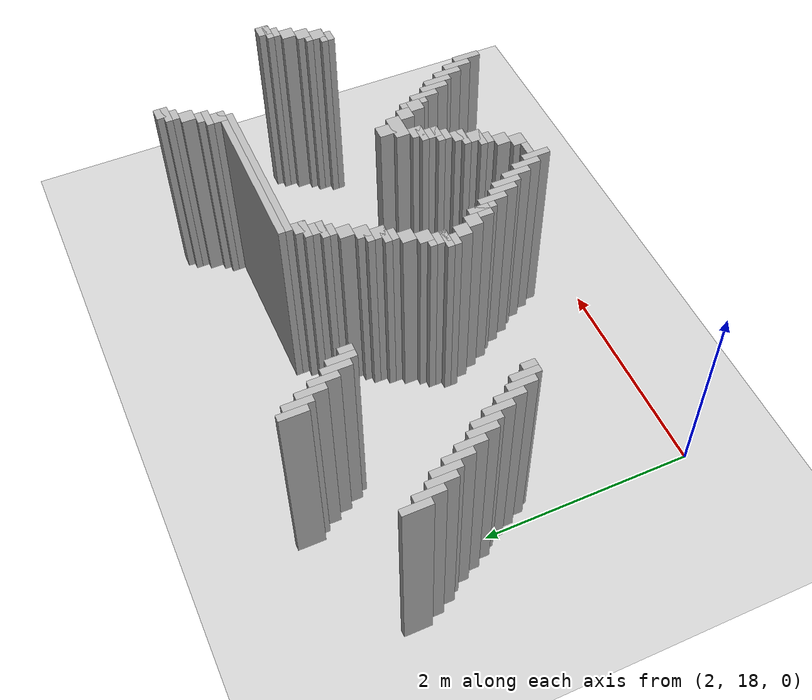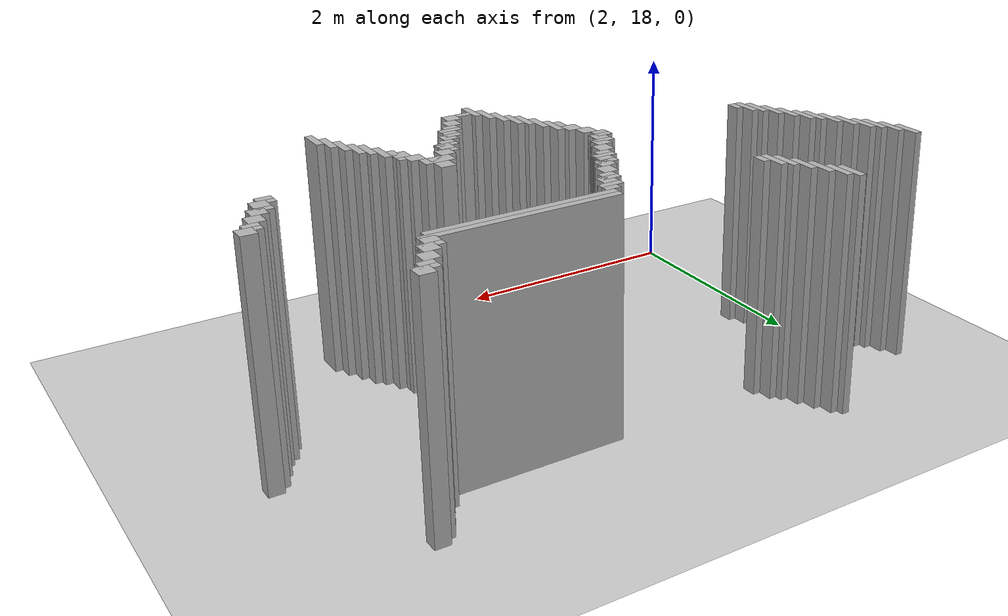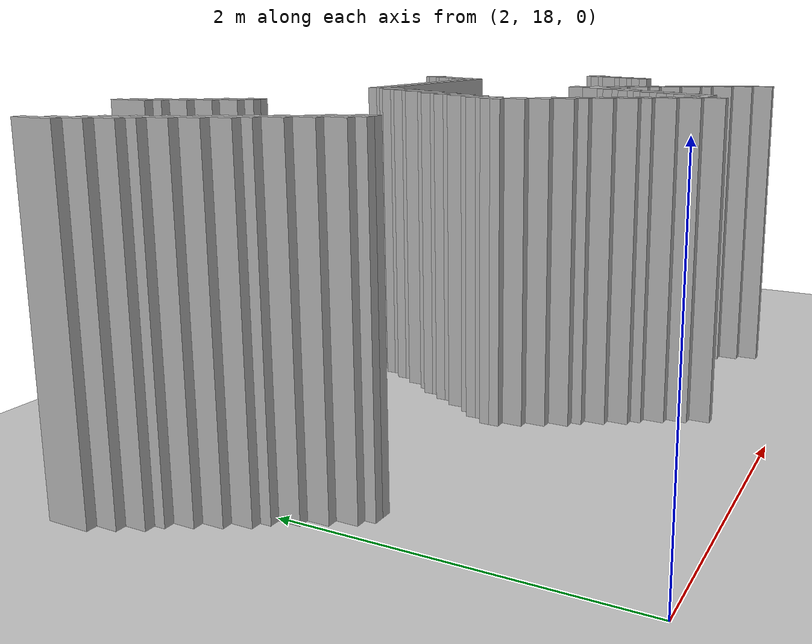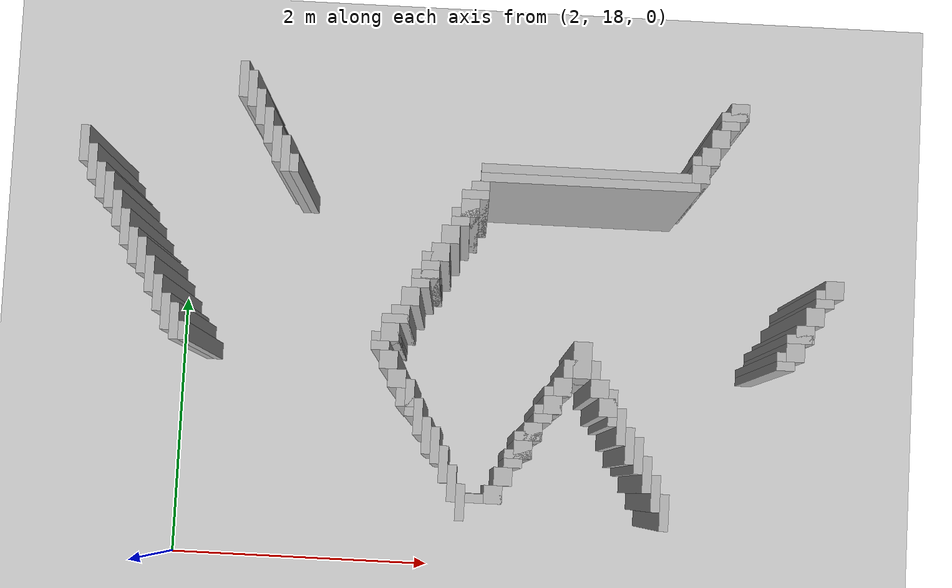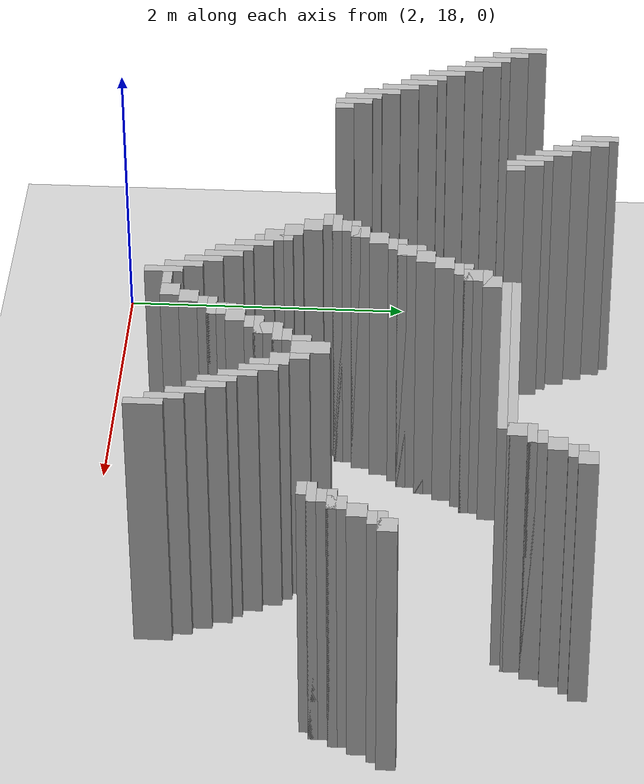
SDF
<sdf version="1.6">
 <world name="slam_world">
  <model name="ground_plane">
   <static>true</static>
   <link name="link">
    <collision name="collision">
     <geometry><plane><normal>0 0 1</normal><size>100 100</size></plane></geometry>
    </collision>
    <visual name="visual">
     <geometry><plane><normal>0 0 1</normal><size>100 100</size></plane></geometry>
     <material>
      <ambient>0.8 0.8 0.8 1</ambient>
      <diffuse>0.8 0.8 0.8 1</diffuse>
      <specular>0.8 0.8 0.8 1</specular>
     </material>
    </visual>
   </link>
  </model>
  <model name="wall_255">
   <static>true</static>
   <pose>2.585106382978723 21.382978723404253 1.0 0 0 0</pose>
   <link name="link">
    <collision name="collision">
     <geometry><box><size>0.06382978723404255 0.2553191489361702 2.0</size></box></geometry>
    </collision>
    <visual name="visual">
     <geometry><box><size>0.06382978723404255 0.2553191489361702 2.0</size></box></geometry>
     <material><ambient>0.5 0.5 0.5 1</ambient><diffuse>0.7 0.7 0.7 1</diffuse></material>
    </visual>
   </link>
  </model>
  <model name="wall_263">
   <static>true</static>
   <pose>2.6489361702127656 21.319148936170212 1.0 0 0 0</pose>
   <link name="link">
    <collision name="collision">
     <geometry><box><size>0.06382978723404255 0.2553191489361702 2.0</size></box></geometry>
    </collision>
    <visual name="visual">
     <geometry><box><size>0.06382978723404255 0.2553191489361702 2.0</size></box></geometry>
     <material><ambient>0.5 0.5 0.5 1</ambient><diffuse>0.7 0.7 0.7 1</diffuse></material>
    </visual>
   </link>
  </model>
  <model name="wall_270">
   <static>true</static>
   <pose>6.063829787234042 21.319148936170212 1.0 0 0 0</pose>
   <link name="link">
    <collision name="collision">
     <geometry><box><size>0.1276595744680851 0.1276595744680851 2.0</size></box></geometry>
    </collision>
    <visual name="visual">
     <geometry><box><size>0.1276595744680851 0.1276595744680851 2.0</size></box></geometry>
     <material><ambient>0.5 0.5 0.5 1</ambient><diffuse>0.7 0.7 0.7 1</diffuse></material>
    </visual>
   </link>
  </model>
  <model name="wall_275">
   <static>true</static>
   <pose>2.712765957446808 21.191489361702125 1.0 0 0 0</pose>
   <link name="link">
    <collision name="collision">
     <geometry><box><size>0.06382978723404255 0.2553191489361702 2.0</size></box></geometry>
    </collision>
    <visual name="visual">
     <geometry><box><size>0.06382978723404255 0.2553191489361702 2.0</size></box></geometry>
     <material><ambient>0.5 0.5 0.5 1</ambient><diffuse>0.7 0.7 0.7 1</diffuse></material>
    </visual>
   </link>
  </model>
  <model name="wall_276">
   <static>true</static>
   <pose>6.031914893617021 21.28723404255319 1.0 0 0 0</pose>
   <link name="link">
    <collision name="collision">
     <geometry><box><size>0.19148936170212766 0.06382978723404255 2.0</size></box></geometry>
    </collision>
    <visual name="visual">
     <geometry><box><size>0.19148936170212766 0.06382978723404255 2.0</size></box></geometry>
     <material><ambient>0.5 0.5 0.5 1</ambient><diffuse>0.7 0.7 0.7 1</diffuse></material>
    </visual>
   </link>
  </model>
  <model name="wall_282">
   <static>true</static>
   <pose>5.999999999999999 21.223404255319146 1.0 0 0 0</pose>
   <link name="link">
    <collision name="collision">
     <geometry><box><size>0.1276595744680851 0.06382978723404255 2.0</size></box></geometry>
    </collision>
    <visual name="visual">
     <geometry><box><size>0.1276595744680851 0.06382978723404255 2.0</size></box></geometry>
     <material><ambient>0.5 0.5 0.5 1</ambient><diffuse>0.7 0.7 0.7 1</diffuse></material>
    </visual>
   </link>
  </model>
  <model name="wall_287">
   <static>true</static>
   <pose>2.7765957446808507 21.06382978723404 1.0 0 0 0</pose>
   <link name="link">
    <collision name="collision">
     <geometry><box><size>0.06382978723404255 0.2553191489361702 2.0</size></box></geometry>
    </collision>
    <visual name="visual">
     <geometry><box><size>0.06382978723404255 0.2553191489361702 2.0</size></box></geometry>
     <material><ambient>0.5 0.5 0.5 1</ambient><diffuse>0.7 0.7 0.7 1</diffuse></material>
    </visual>
   </link>
  </model>
  <model name="wall_288">
   <static>true</static>
   <pose>5.936170212765957 21.127659574468083 1.0 0 0 0</pose>
   <link name="link">
    <collision name="collision">
     <geometry><box><size>0.1276595744680851 0.1276595744680851 2.0</size></box></geometry>
    </collision>
    <visual name="visual">
     <geometry><box><size>0.1276595744680851 0.1276595744680851 2.0</size></box></geometry>
     <material><ambient>0.5 0.5 0.5 1</ambient><diffuse>0.7 0.7 0.7 1</diffuse></material>
    </visual>
   </link>
  </model>
  <model name="wall_295">
   <static>true</static>
   <pose>2.840425531914893 20.936170212765955 1.0 0 0 0</pose>
   <link name="link">
    <collision name="collision">
     <geometry><box><size>0.06382978723404255 0.2553191489361702 2.0</size></box></geometry>
    </collision>
    <visual name="visual">
     <geometry><box><size>0.06382978723404255 0.2553191489361702 2.0</size></box></geometry>
     <material><ambient>0.5 0.5 0.5 1</ambient><diffuse>0.7 0.7 0.7 1</diffuse></material>
    </visual>
   </link>
  </model>
  <model name="wall_296">
   <static>true</static>
   <pose>5.872340425531914 21.0 1.0 0 0 0</pose>
   <link name="link">
    <collision name="collision">
     <geometry><box><size>0.1276595744680851 0.1276595744680851 2.0</size></box></geometry>
    </collision>
    <visual name="visual">
     <geometry><box><size>0.1276595744680851 0.1276595744680851 2.0</size></box></geometry>
     <material><ambient>0.5 0.5 0.5 1</ambient><diffuse>0.7 0.7 0.7 1</diffuse></material>
    </visual>
   </link>
  </model>
  <model name="wall_302">
   <static>true</static>
   <pose>1.4999999999999998 20.872340425531913 1.0 0 0 0</pose>
   <link name="link">
    <collision name="collision">
     <geometry><box><size>0.06382978723404255 0.2553191489361702 2.0</size></box></geometry>
    </collision>
    <visual name="visual">
     <geometry><box><size>0.06382978723404255 0.2553191489361702 2.0</size></box></geometry>
     <material><ambient>0.5 0.5 0.5 1</ambient><diffuse>0.7 0.7 0.7 1</diffuse></material>
    </visual>
   </link>
  </model>
  <model name="wall_303">
   <static>true</static>
   <pose>2.9042553191489358 20.872340425531913 1.0 0 0 0</pose>
   <link name="link">
    <collision name="collision">
     <geometry><box><size>0.06382978723404255 0.2553191489361702 2.0</size></box></geometry>
    </collision>
    <visual name="visual">
     <geometry><box><size>0.06382978723404255 0.2553191489361702 2.0</size></box></geometry>
     <material><ambient>0.5 0.5 0.5 1</ambient><diffuse>0.7 0.7 0.7 1</diffuse></material>
    </visual>
   </link>
  </model>
  <model name="wall_304">
   <static>true</static>
   <pose>5.840425531914893 20.968085106382976 1.0 0 0 0</pose>
   <link name="link">
    <collision name="collision">
     <geometry><box><size>0.19148936170212766 0.06382978723404255 2.0</size></box></geometry>
    </collision>
    <visual name="visual">
     <geometry><box><size>0.19148936170212766 0.06382978723404255 2.0</size></box></geometry>
     <material><ambient>0.5 0.5 0.5 1</ambient><diffuse>0.7 0.7 0.7 1</diffuse></material>
    </visual>
   </link>
  </model>
  <model name="wall_310">
   <static>true</static>
   <pose>5.8085106382978715 20.872340425531913 1.0 0 0 0</pose>
   <link name="link">
    <collision name="collision">
     <geometry><box><size>0.1276595744680851 0.1276595744680851 2.0</size></box></geometry>
    </collision>
    <visual name="visual">
     <geometry><box><size>0.1276595744680851 0.1276595744680851 2.0</size></box></geometry>
     <material><ambient>0.5 0.5 0.5 1</ambient><diffuse>0.7 0.7 0.7 1</diffuse></material>
    </visual>
   </link>
  </model>
  <model name="wall_314">
   <static>true</static>
   <pose>1.5638297872340425 20.74468085106383 1.0 0 0 0</pose>
   <link name="link">
    <collision name="collision">
     <geometry><box><size>0.06382978723404255 0.2553191489361702 2.0</size></box></geometry>
    </collision>
    <visual name="visual">
     <geometry><box><size>0.06382978723404255 0.2553191489361702 2.0</size></box></geometry>
     <material><ambient>0.5 0.5 0.5 1</ambient><diffuse>0.7 0.7 0.7 1</diffuse></material>
    </visual>
   </link>
  </model>
  <model name="wall_315">
   <static>true</static>
   <pose>2.9680851063829783 20.80851063829787 1.0 0 0 0</pose>
   <link name="link">
    <collision name="collision">
     <geometry><box><size>0.06382978723404255 0.1276595744680851 2.0</size></box></geometry>
    </collision>
    <visual name="visual">
     <geometry><box><size>0.06382978723404255 0.1276595744680851 2.0</size></box></geometry>
     <material><ambient>0.5 0.5 0.5 1</ambient><diffuse>0.7 0.7 0.7 1</diffuse></material>
    </visual>
   </link>
  </model>
  <model name="wall_316">
   <static>true</static>
   <pose>5.074468085106383 20.840425531914892 1.0 0 0 0</pose>
   <link name="link">
    <collision name="collision">
     <geometry><box><size>1.5957446808510638 0.06382978723404255 2.0</size></box></geometry>
    </collision>
    <visual name="visual">
     <geometry><box><size>1.5957446808510638 0.06382978723404255 2.0</size></box></geometry>
     <material><ambient>0.5 0.5 0.5 1</ambient><diffuse>0.7 0.7 0.7 1</diffuse></material>
    </visual>
   </link>
  </model>
  <model name="wall_323">
   <static>true</static>
   <pose>5.042553191489361 20.77659574468085 1.0 0 0 0</pose>
   <link name="link">
    <collision name="collision">
     <geometry><box><size>1.5319148936170213 0.06382978723404255 2.0</size></box></geometry>
    </collision>
    <visual name="visual">
     <geometry><box><size>1.5319148936170213 0.06382978723404255 2.0</size></box></geometry>
     <material><ambient>0.5 0.5 0.5 1</ambient><diffuse>0.7 0.7 0.7 1</diffuse></material>
    </visual>
   </link>
  </model>
  <model name="wall_327">
   <static>true</static>
   <pose>1.627659574468085 20.617021276595743 1.0 0 0 0</pose>
   <link name="link">
    <collision name="collision">
     <geometry><box><size>0.06382978723404255 0.2553191489361702 2.0</size></box></geometry>
    </collision>
    <visual name="visual">
     <geometry><box><size>0.06382978723404255 0.2553191489361702 2.0</size></box></geometry>
     <material><ambient>0.5 0.5 0.5 1</ambient><diffuse>0.7 0.7 0.7 1</diffuse></material>
    </visual>
   </link>
  </model>
  <model name="wall_328">
   <static>true</static>
   <pose>4.276595744680851 20.680851063829785 1.0 0 0 0</pose>
   <link name="link">
    <collision name="collision">
     <geometry><box><size>0.1276595744680851 0.1276595744680851 2.0</size></box></geometry>
    </collision>
    <visual name="visual">
     <geometry><box><size>0.1276595744680851 0.1276595744680851 2.0</size></box></geometry>
     <material><ambient>0.5 0.5 0.5 1</ambient><diffuse>0.7 0.7 0.7 1</diffuse></material>
    </visual>
   </link>
  </model>
  <model name="wall_335">
   <static>true</static>
   <pose>1.6914893617021276 20.5531914893617 1.0 0 0 0</pose>
   <link name="link">
    <collision name="collision">
     <geometry><box><size>0.06382978723404255 0.2553191489361702 2.0</size></box></geometry>
    </collision>
    <visual name="visual">
     <geometry><box><size>0.06382978723404255 0.2553191489361702 2.0</size></box></geometry>
     <material><ambient>0.5 0.5 0.5 1</ambient><diffuse>0.7 0.7 0.7 1</diffuse></material>
    </visual>
   </link>
  </model>
  <model name="wall_336">
   <static>true</static>
   <pose>4.24468085106383 20.648936170212764 1.0 0 0 0</pose>
   <link name="link">
    <collision name="collision">
     <geometry><box><size>0.19148936170212766 0.06382978723404255 2.0</size></box></geometry>
    </collision>
    <visual name="visual">
     <geometry><box><size>0.19148936170212766 0.06382978723404255 2.0</size></box></geometry>
     <material><ambient>0.5 0.5 0.5 1</ambient><diffuse>0.7 0.7 0.7 1</diffuse></material>
    </visual>
   </link>
  </model>
  <model name="wall_343">
   <static>true</static>
   <pose>4.212765957446808 20.5531914893617 1.0 0 0 0</pose>
   <link name="link">
    <collision name="collision">
     <geometry><box><size>0.1276595744680851 0.1276595744680851 2.0</size></box></geometry>
    </collision>
    <visual name="visual">
     <geometry><box><size>0.1276595744680851 0.1276595744680851 2.0</size></box></geometry>
     <material><ambient>0.5 0.5 0.5 1</ambient><diffuse>0.7 0.7 0.7 1</diffuse></material>
    </visual>
   </link>
  </model>
  <model name="wall_350">
   <static>true</static>
   <pose>1.7553191489361701 20.425531914893615 1.0 0 0 0</pose>
   <link name="link">
    <collision name="collision">
     <geometry><box><size>0.06382978723404255 0.2553191489361702 2.0</size></box></geometry>
    </collision>
    <visual name="visual">
     <geometry><box><size>0.06382978723404255 0.2553191489361702 2.0</size></box></geometry>
     <material><ambient>0.5 0.5 0.5 1</ambient><diffuse>0.7 0.7 0.7 1</diffuse></material>
    </visual>
   </link>
  </model>
  <model name="wall_351">
   <static>true</static>
   <pose>4.180851063829787 20.52127659574468 1.0 0 0 0</pose>
   <link name="link">
    <collision name="collision">
     <geometry><box><size>0.19148936170212766 0.06382978723404255 2.0</size></box></geometry>
    </collision>
    <visual name="visual">
     <geometry><box><size>0.19148936170212766 0.06382978723404255 2.0</size></box></geometry>
     <material><ambient>0.5 0.5 0.5 1</ambient><diffuse>0.7 0.7 0.7 1</diffuse></material>
    </visual>
   </link>
  </model>
  <model name="wall_357">
   <static>true</static>
   <pose>4.148936170212766 20.457446808510635 1.0 0 0 0</pose>
   <link name="link">
    <collision name="collision">
     <geometry><box><size>0.1276595744680851 0.06382978723404255 2.0</size></box></geometry>
    </collision>
    <visual name="visual">
     <geometry><box><size>0.1276595744680851 0.06382978723404255 2.0</size></box></geometry>
     <material><ambient>0.5 0.5 0.5 1</ambient><diffuse>0.7 0.7 0.7 1</diffuse></material>
    </visual>
   </link>
  </model>
  <model name="wall_362">
   <static>true</static>
   <pose>1.8191489361702127 20.29787234042553 1.0 0 0 0</pose>
   <link name="link">
    <collision name="collision">
     <geometry><box><size>0.06382978723404255 0.2553191489361702 2.0</size></box></geometry>
    </collision>
    <visual name="visual">
     <geometry><box><size>0.06382978723404255 0.2553191489361702 2.0</size></box></geometry>
     <material><ambient>0.5 0.5 0.5 1</ambient><diffuse>0.7 0.7 0.7 1</diffuse></material>
    </visual>
   </link>
  </model>
  <model name="wall_363">
   <static>true</static>
   <pose>4.085106382978723 20.361702127659573 1.0 0 0 0</pose>
   <link name="link">
    <collision name="collision">
     <geometry><box><size>0.1276595744680851 0.1276595744680851 2.0</size></box></geometry>
    </collision>
    <visual name="visual">
     <geometry><box><size>0.1276595744680851 0.1276595744680851 2.0</size></box></geometry>
     <material><ambient>0.5 0.5 0.5 1</ambient><diffuse>0.7 0.7 0.7 1</diffuse></material>
    </visual>
   </link>
  </model>
  <model name="wall_370">
   <static>true</static>
   <pose>1.8829787234042552 20.170212765957444 1.0 0 0 0</pose>
   <link name="link">
    <collision name="collision">
     <geometry><box><size>0.06382978723404255 0.2553191489361702 2.0</size></box></geometry>
    </collision>
    <visual name="visual">
     <geometry><box><size>0.06382978723404255 0.2553191489361702 2.0</size></box></geometry>
     <material><ambient>0.5 0.5 0.5 1</ambient><diffuse>0.7 0.7 0.7 1</diffuse></material>
    </visual>
   </link>
  </model>
  <model name="wall_371">
   <static>true</static>
   <pose>4.0212765957446805 20.234042553191486 1.0 0 0 0</pose>
   <link name="link">
    <collision name="collision">
     <geometry><box><size>0.1276595744680851 0.1276595744680851 2.0</size></box></geometry>
    </collision>
    <visual name="visual">
     <geometry><box><size>0.1276595744680851 0.1276595744680851 2.0</size></box></geometry>
     <material><ambient>0.5 0.5 0.5 1</ambient><diffuse>0.7 0.7 0.7 1</diffuse></material>
    </visual>
   </link>
  </model>
  <model name="wall_378">
   <static>true</static>
   <pose>1.9468085106382977 20.106382978723403 1.0 0 0 0</pose>
   <link name="link">
    <collision name="collision">
     <geometry><box><size>0.06382978723404255 0.2553191489361702 2.0</size></box></geometry>
    </collision>
    <visual name="visual">
     <geometry><box><size>0.06382978723404255 0.2553191489361702 2.0</size></box></geometry>
     <material><ambient>0.5 0.5 0.5 1</ambient><diffuse>0.7 0.7 0.7 1</diffuse></material>
    </visual>
   </link>
  </model>
  <model name="wall_379">
   <static>true</static>
   <pose>3.9893617021276593 20.202127659574465 1.0 0 0 0</pose>
   <link name="link">
    <collision name="collision">
     <geometry><box><size>0.19148936170212766 0.06382978723404255 2.0</size></box></geometry>
    </collision>
    <visual name="visual">
     <geometry><box><size>0.19148936170212766 0.06382978723404255 2.0</size></box></geometry>
     <material><ambient>0.5 0.5 0.5 1</ambient><diffuse>0.7 0.7 0.7 1</diffuse></material>
    </visual>
   </link>
  </model>
  <model name="wall_385">
   <static>true</static>
   <pose>3.957446808510638 20.106382978723403 1.0 0 0 0</pose>
   <link name="link">
    <collision name="collision">
     <geometry><box><size>0.1276595744680851 0.1276595744680851 2.0</size></box></geometry>
    </collision>
    <visual name="visual">
     <geometry><box><size>0.1276595744680851 0.1276595744680851 2.0</size></box></geometry>
     <material><ambient>0.5 0.5 0.5 1</ambient><diffuse>0.7 0.7 0.7 1</diffuse></material>
    </visual>
   </link>
  </model>
  <model name="wall_386">
   <static>true</static>
   <pose>6.76595744680851 20.106382978723403 1.0 0 0 0</pose>
   <link name="link">
    <collision name="collision">
     <geometry><box><size>0.1276595744680851 0.1276595744680851 2.0</size></box></geometry>
    </collision>
    <visual name="visual">
     <geometry><box><size>0.1276595744680851 0.1276595744680851 2.0</size></box></geometry>
     <material><ambient>0.5 0.5 0.5 1</ambient><diffuse>0.7 0.7 0.7 1</diffuse></material>
    </visual>
   </link>
  </model>
  <model name="wall_390">
   <static>true</static>
   <pose>2.0106382978723403 19.978723404255316 1.0 0 0 0</pose>
   <link name="link">
    <collision name="collision">
     <geometry><box><size>0.06382978723404255 0.2553191489361702 2.0</size></box></geometry>
    </collision>
    <visual name="visual">
     <geometry><box><size>0.06382978723404255 0.2553191489361702 2.0</size></box></geometry>
     <material><ambient>0.5 0.5 0.5 1</ambient><diffuse>0.7 0.7 0.7 1</diffuse></material>
    </visual>
   </link>
  </model>
  <model name="wall_391">
   <static>true</static>
   <pose>3.9255319148936167 20.074468085106382 1.0 0 0 0</pose>
   <link name="link">
    <collision name="collision">
     <geometry><box><size>0.19148936170212766 0.06382978723404255 2.0</size></box></geometry>
    </collision>
    <visual name="visual">
     <geometry><box><size>0.19148936170212766 0.06382978723404255 2.0</size></box></geometry>
     <material><ambient>0.5 0.5 0.5 1</ambient><diffuse>0.7 0.7 0.7 1</diffuse></material>
    </visual>
   </link>
  </model>
  <model name="wall_392">
   <static>true</static>
   <pose>6.734042553191489 20.074468085106382 1.0 0 0 0</pose>
   <link name="link">
    <collision name="collision">
     <geometry><box><size>0.19148936170212766 0.06382978723404255 2.0</size></box></geometry>
    </collision>
    <visual name="visual">
     <geometry><box><size>0.19148936170212766 0.06382978723404255 2.0</size></box></geometry>
     <material><ambient>0.5 0.5 0.5 1</ambient><diffuse>0.7 0.7 0.7 1</diffuse></material>
    </visual>
   </link>
  </model>
  <model name="wall_397">
   <static>true</static>
   <pose>3.8936170212765955 20.01063829787234 1.0 0 0 0</pose>
   <link name="link">
    <collision name="collision">
     <geometry><box><size>0.1276595744680851 0.06382978723404255 2.0</size></box></geometry>
    </collision>
    <visual name="visual">
     <geometry><box><size>0.1276595744680851 0.06382978723404255 2.0</size></box></geometry>
     <material><ambient>0.5 0.5 0.5 1</ambient><diffuse>0.7 0.7 0.7 1</diffuse></material>
    </visual>
   </link>
  </model>
  <model name="wall_398">
   <static>true</static>
   <pose>6.702127659574468 20.01063829787234 1.0 0 0 0</pose>
   <link name="link">
    <collision name="collision">
     <geometry><box><size>0.1276595744680851 0.06382978723404255 2.0</size></box></geometry>
    </collision>
    <visual name="visual">
     <geometry><box><size>0.1276595744680851 0.06382978723404255 2.0</size></box></geometry>
     <material><ambient>0.5 0.5 0.5 1</ambient><diffuse>0.7 0.7 0.7 1</diffuse></material>
    </visual>
   </link>
  </model>
  <model name="wall_402">
   <static>true</static>
   <pose>2.074468085106383 19.851063829787233 1.0 0 0 0</pose>
   <link name="link">
    <collision name="collision">
     <geometry><box><size>0.06382978723404255 0.2553191489361702 2.0</size></box></geometry>
    </collision>
    <visual name="visual">
     <geometry><box><size>0.06382978723404255 0.2553191489361702 2.0</size></box></geometry>
     <material><ambient>0.5 0.5 0.5 1</ambient><diffuse>0.7 0.7 0.7 1</diffuse></material>
    </visual>
   </link>
  </model>
  <model name="wall_403">
   <static>true</static>
   <pose>3.829787234042553 19.914893617021274 1.0 0 0 0</pose>
   <link name="link">
    <collision name="collision">
     <geometry><box><size>0.1276595744680851 0.1276595744680851 2.0</size></box></geometry>
    </collision>
    <visual name="visual">
     <geometry><box><size>0.1276595744680851 0.1276595744680851 2.0</size></box></geometry>
     <material><ambient>0.5 0.5 0.5 1</ambient><diffuse>0.7 0.7 0.7 1</diffuse></material>
    </visual>
   </link>
  </model>
  <model name="wall_404">
   <static>true</static>
   <pose>6.638297872340425 19.914893617021274 1.0 0 0 0</pose>
   <link name="link">
    <collision name="collision">
     <geometry><box><size>0.1276595744680851 0.1276595744680851 2.0</size></box></geometry>
    </collision>
    <visual name="visual">
     <geometry><box><size>0.1276595744680851 0.1276595744680851 2.0</size></box></geometry>
     <material><ambient>0.5 0.5 0.5 1</ambient><diffuse>0.7 0.7 0.7 1</diffuse></material>
    </visual>
   </link>
  </model>
  <model name="wall_410">
   <static>true</static>
   <pose>2.1382978723404253 19.723404255319146 1.0 0 0 0</pose>
   <link name="link">
    <collision name="collision">
     <geometry><box><size>0.06382978723404255 0.2553191489361702 2.0</size></box></geometry>
    </collision>
    <visual name="visual">
     <geometry><box><size>0.06382978723404255 0.2553191489361702 2.0</size></box></geometry>
     <material><ambient>0.5 0.5 0.5 1</ambient><diffuse>0.7 0.7 0.7 1</diffuse></material>
    </visual>
   </link>
  </model>
  <model name="wall_411">
   <static>true</static>
   <pose>3.7659574468085104 19.78723404255319 1.0 0 0 0</pose>
   <link name="link">
    <collision name="collision">
     <geometry><box><size>0.1276595744680851 0.1276595744680851 2.0</size></box></geometry>
    </collision>
    <visual name="visual">
     <geometry><box><size>0.1276595744680851 0.1276595744680851 2.0</size></box></geometry>
     <material><ambient>0.5 0.5 0.5 1</ambient><diffuse>0.7 0.7 0.7 1</diffuse></material>
    </visual>
   </link>
  </model>
  <model name="wall_412">
   <static>true</static>
   <pose>6.574468085106383 19.78723404255319 1.0 0 0 0</pose>
   <link name="link">
    <collision name="collision">
     <geometry><box><size>0.1276595744680851 0.1276595744680851 2.0</size></box></geometry>
    </collision>
    <visual name="visual">
     <geometry><box><size>0.1276595744680851 0.1276595744680851 2.0</size></box></geometry>
     <material><ambient>0.5 0.5 0.5 1</ambient><diffuse>0.7 0.7 0.7 1</diffuse></material>
    </visual>
   </link>
  </model>
  <model name="wall_418">
   <static>true</static>
   <pose>2.202127659574468 19.659574468085104 1.0 0 0 0</pose>
   <link name="link">
    <collision name="collision">
     <geometry><box><size>0.06382978723404255 0.2553191489361702 2.0</size></box></geometry>
    </collision>
    <visual name="visual">
     <geometry><box><size>0.06382978723404255 0.2553191489361702 2.0</size></box></geometry>
     <material><ambient>0.5 0.5 0.5 1</ambient><diffuse>0.7 0.7 0.7 1</diffuse></material>
    </visual>
   </link>
  </model>
  <model name="wall_419">
   <static>true</static>
   <pose>3.734042553191489 19.75531914893617 1.0 0 0 0</pose>
   <link name="link">
    <collision name="collision">
     <geometry><box><size>0.19148936170212766 0.06382978723404255 2.0</size></box></geometry>
    </collision>
    <visual name="visual">
     <geometry><box><size>0.19148936170212766 0.06382978723404255 2.0</size></box></geometry>
     <material><ambient>0.5 0.5 0.5 1</ambient><diffuse>0.7 0.7 0.7 1</diffuse></material>
    </visual>
   </link>
  </model>
  <model name="wall_420">
   <static>true</static>
   <pose>6.542553191489361 19.75531914893617 1.0 0 0 0</pose>
   <link name="link">
    <collision name="collision">
     <geometry><box><size>0.19148936170212766 0.06382978723404255 2.0</size></box></geometry>
    </collision>
    <visual name="visual">
     <geometry><box><size>0.19148936170212766 0.06382978723404255 2.0</size></box></geometry>
     <material><ambient>0.5 0.5 0.5 1</ambient><diffuse>0.7 0.7 0.7 1</diffuse></material>
    </visual>
   </link>
  </model>
  <model name="wall_425">
   <static>true</static>
   <pose>3.702127659574468 19.659574468085104 1.0 0 0 0</pose>
   <link name="link">
    <collision name="collision">
     <geometry><box><size>0.1276595744680851 0.1276595744680851 2.0</size></box></geometry>
    </collision>
    <visual name="visual">
     <geometry><box><size>0.1276595744680851 0.1276595744680851 2.0</size></box></geometry>
     <material><ambient>0.5 0.5 0.5 1</ambient><diffuse>0.7 0.7 0.7 1</diffuse></material>
    </visual>
   </link>
  </model>
  <model name="wall_426">
   <static>true</static>
   <pose>6.51063829787234 19.659574468085104 1.0 0 0 0</pose>
   <link name="link">
    <collision name="collision">
     <geometry><box><size>0.1276595744680851 0.1276595744680851 2.0</size></box></geometry>
    </collision>
    <visual name="visual">
     <geometry><box><size>0.1276595744680851 0.1276595744680851 2.0</size></box></geometry>
     <material><ambient>0.5 0.5 0.5 1</ambient><diffuse>0.7 0.7 0.7 1</diffuse></material>
    </visual>
   </link>
  </model>
  <model name="wall_430">
   <static>true</static>
   <pose>2.2659574468085104 19.595744680851062 1.0 0 0 0</pose>
   <link name="link">
    <collision name="collision">
     <geometry><box><size>0.06382978723404255 0.1276595744680851 2.0</size></box></geometry>
    </collision>
    <visual name="visual">
     <geometry><box><size>0.06382978723404255 0.1276595744680851 2.0</size></box></geometry>
     <material><ambient>0.5 0.5 0.5 1</ambient><diffuse>0.7 0.7 0.7 1</diffuse></material>
    </visual>
   </link>
  </model>
  <model name="wall_431">
   <static>true</static>
   <pose>3.6702127659574466 19.627659574468083 1.0 0 0 0</pose>
   <link name="link">
    <collision name="collision">
     <geometry><box><size>0.19148936170212766 0.06382978723404255 2.0</size></box></geometry>
    </collision>
    <visual name="visual">
     <geometry><box><size>0.19148936170212766 0.06382978723404255 2.0</size></box></geometry>
     <material><ambient>0.5 0.5 0.5 1</ambient><diffuse>0.7 0.7 0.7 1</diffuse></material>
    </visual>
   </link>
  </model>
  <model name="wall_432">
   <static>true</static>
   <pose>5.042553191489361 19.53191489361702 1.0 0 0 0</pose>
   <link name="link">
    <collision name="collision">
     <geometry><box><size>0.1276595744680851 0.2553191489361702 2.0</size></box></geometry>
    </collision>
    <visual name="visual">
     <geometry><box><size>0.1276595744680851 0.2553191489361702 2.0</size></box></geometry>
     <material><ambient>0.5 0.5 0.5 1</ambient><diffuse>0.7 0.7 0.7 1</diffuse></material>
    </visual>
   </link>
  </model>
  <model name="wall_433">
   <static>true</static>
   <pose>6.478723404255319 19.627659574468083 1.0 0 0 0</pose>
   <link name="link">
    <collision name="collision">
     <geometry><box><size>0.19148936170212766 0.06382978723404255 2.0</size></box></geometry>
    </collision>
    <visual name="visual">
     <geometry><box><size>0.19148936170212766 0.06382978723404255 2.0</size></box></geometry>
     <material><ambient>0.5 0.5 0.5 1</ambient><diffuse>0.7 0.7 0.7 1</diffuse></material>
    </visual>
   </link>
  </model>
  <model name="wall_439">
   <static>true</static>
   <pose>3.6382978723404253 19.56382978723404 1.0 0 0 0</pose>
   <link name="link">
    <collision name="collision">
     <geometry><box><size>0.1276595744680851 0.06382978723404255 2.0</size></box></geometry>
    </collision>
    <visual name="visual">
     <geometry><box><size>0.1276595744680851 0.06382978723404255 2.0</size></box></geometry>
     <material><ambient>0.5 0.5 0.5 1</ambient><diffuse>0.7 0.7 0.7 1</diffuse></material>
    </visual>
   </link>
  </model>
  <model name="wall_440">
   <static>true</static>
   <pose>6.446808510638298 19.56382978723404 1.0 0 0 0</pose>
   <link name="link">
    <collision name="collision">
     <geometry><box><size>0.1276595744680851 0.06382978723404255 2.0</size></box></geometry>
    </collision>
    <visual name="visual">
     <geometry><box><size>0.1276595744680851 0.06382978723404255 2.0</size></box></geometry>
     <material><ambient>0.5 0.5 0.5 1</ambient><diffuse>0.7 0.7 0.7 1</diffuse></material>
    </visual>
   </link>
  </model>
  <model name="wall_444">
   <static>true</static>
   <pose>3.702127659574468 19.468085106382976 1.0 0 0 0</pose>
   <link name="link">
    <collision name="collision">
     <geometry><box><size>0.1276595744680851 0.1276595744680851 2.0</size></box></geometry>
    </collision>
    <visual name="visual">
     <geometry><box><size>0.1276595744680851 0.1276595744680851 2.0</size></box></geometry>
     <material><ambient>0.5 0.5 0.5 1</ambient><diffuse>0.7 0.7 0.7 1</diffuse></material>
    </visual>
   </link>
  </model>
  <model name="wall_445">
   <static>true</static>
   <pose>5.042553191489361 19.468085106382976 1.0 0 0 0</pose>
   <link name="link">
    <collision name="collision">
     <geometry><box><size>0.2553191489361702 0.1276595744680851 2.0</size></box></geometry>
    </collision>
    <visual name="visual">
     <geometry><box><size>0.2553191489361702 0.1276595744680851 2.0</size></box></geometry>
     <material><ambient>0.5 0.5 0.5 1</ambient><diffuse>0.7 0.7 0.7 1</diffuse></material>
    </visual>
   </link>
  </model>
  <model name="wall_454">
   <static>true</static>
   <pose>3.7659574468085104 19.340425531914892 1.0 0 0 0</pose>
   <link name="link">
    <collision name="collision">
     <geometry><box><size>0.1276595744680851 0.1276595744680851 2.0</size></box></geometry>
    </collision>
    <visual name="visual">
     <geometry><box><size>0.1276595744680851 0.1276595744680851 2.0</size></box></geometry>
     <material><ambient>0.5 0.5 0.5 1</ambient><diffuse>0.7 0.7 0.7 1</diffuse></material>
    </visual>
   </link>
  </model>
  <model name="wall_455">
   <static>true</static>
   <pose>4.914893617021276 19.340425531914892 1.0 0 0 0</pose>
   <link name="link">
    <collision name="collision">
     <geometry><box><size>0.1276595744680851 0.1276595744680851 2.0</size></box></geometry>
    </collision>
    <visual name="visual">
     <geometry><box><size>0.1276595744680851 0.1276595744680851 2.0</size></box></geometry>
     <material><ambient>0.5 0.5 0.5 1</ambient><diffuse>0.7 0.7 0.7 1</diffuse></material>
    </visual>
   </link>
  </model>
  <model name="wall_456">
   <static>true</static>
   <pose>5.170212765957446 19.340425531914892 1.0 0 0 0</pose>
   <link name="link">
    <collision name="collision">
     <geometry><box><size>0.1276595744680851 0.1276595744680851 2.0</size></box></geometry>
    </collision>
    <visual name="visual">
     <geometry><box><size>0.1276595744680851 0.1276595744680851 2.0</size></box></geometry>
     <material><ambient>0.5 0.5 0.5 1</ambient><diffuse>0.7 0.7 0.7 1</diffuse></material>
    </visual>
   </link>
  </model>
  <model name="wall_464">
   <static>true</static>
   <pose>3.861702127659574 19.212765957446805 1.0 0 0 0</pose>
   <link name="link">
    <collision name="collision">
     <geometry><box><size>0.06382978723404255 0.2553191489361702 2.0</size></box></geometry>
    </collision>
    <visual name="visual">
     <geometry><box><size>0.06382978723404255 0.2553191489361702 2.0</size></box></geometry>
     <material><ambient>0.5 0.5 0.5 1</ambient><diffuse>0.7 0.7 0.7 1</diffuse></material>
    </visual>
   </link>
  </model>
  <model name="wall_465">
   <static>true</static>
   <pose>4.882978723404255 19.30851063829787 1.0 0 0 0</pose>
   <link name="link">
    <collision name="collision">
     <geometry><box><size>0.19148936170212766 0.06382978723404255 2.0</size></box></geometry>
    </collision>
    <visual name="visual">
     <geometry><box><size>0.19148936170212766 0.06382978723404255 2.0</size></box></geometry>
     <material><ambient>0.5 0.5 0.5 1</ambient><diffuse>0.7 0.7 0.7 1</diffuse></material>
    </visual>
   </link>
  </model>
  <model name="wall_466">
   <static>true</static>
   <pose>5.26595744680851 19.212765957446805 1.0 0 0 0</pose>
   <link name="link">
    <collision name="collision">
     <geometry><box><size>0.06382978723404255 0.2553191489361702 2.0</size></box></geometry>
    </collision>
    <visual name="visual">
     <geometry><box><size>0.06382978723404255 0.2553191489361702 2.0</size></box></geometry>
     <material><ambient>0.5 0.5 0.5 1</ambient><diffuse>0.7 0.7 0.7 1</diffuse></material>
    </visual>
   </link>
  </model>
  <model name="wall_474">
   <static>true</static>
   <pose>3.829787234042553 19.212765957446805 1.0 0 0 0</pose>
   <link name="link">
    <collision name="collision">
     <geometry><box><size>0.1276595744680851 0.1276595744680851 2.0</size></box></geometry>
    </collision>
    <visual name="visual">
     <geometry><box><size>0.1276595744680851 0.1276595744680851 2.0</size></box></geometry>
     <material><ambient>0.5 0.5 0.5 1</ambient><diffuse>0.7 0.7 0.7 1</diffuse></material>
    </visual>
   </link>
  </model>
  <model name="wall_475">
   <static>true</static>
   <pose>4.8510638297872335 19.212765957446805 1.0 0 0 0</pose>
   <link name="link">
    <collision name="collision">
     <geometry><box><size>0.1276595744680851 0.1276595744680851 2.0</size></box></geometry>
    </collision>
    <visual name="visual">
     <geometry><box><size>0.1276595744680851 0.1276595744680851 2.0</size></box></geometry>
     <material><ambient>0.5 0.5 0.5 1</ambient><diffuse>0.7 0.7 0.7 1</diffuse></material>
    </visual>
   </link>
  </model>
  <model name="wall_476">
   <static>true</static>
   <pose>5.234042553191489 19.212765957446805 1.0 0 0 0</pose>
   <link name="link">
    <collision name="collision">
     <geometry><box><size>0.1276595744680851 0.1276595744680851 2.0</size></box></geometry>
    </collision>
    <visual name="visual">
     <geometry><box><size>0.1276595744680851 0.1276595744680851 2.0</size></box></geometry>
     <material><ambient>0.5 0.5 0.5 1</ambient><diffuse>0.7 0.7 0.7 1</diffuse></material>
    </visual>
   </link>
  </model>
  <model name="wall_484">
   <static>true</static>
   <pose>3.9255319148936167 19.085106382978722 1.0 0 0 0</pose>
   <link name="link">
    <collision name="collision">
     <geometry><box><size>0.06382978723404255 0.2553191489361702 2.0</size></box></geometry>
    </collision>
    <visual name="visual">
     <geometry><box><size>0.06382978723404255 0.2553191489361702 2.0</size></box></geometry>
     <material><ambient>0.5 0.5 0.5 1</ambient><diffuse>0.7 0.7 0.7 1</diffuse></material>
    </visual>
   </link>
  </model>
  <model name="wall_485">
   <static>true</static>
   <pose>4.819148936170213 19.180851063829785 1.0 0 0 0</pose>
   <link name="link">
    <collision name="collision">
     <geometry><box><size>0.19148936170212766 0.06382978723404255 2.0</size></box></geometry>
    </collision>
    <visual name="visual">
     <geometry><box><size>0.19148936170212766 0.06382978723404255 2.0</size></box></geometry>
     <material><ambient>0.5 0.5 0.5 1</ambient><diffuse>0.7 0.7 0.7 1</diffuse></material>
    </visual>
   </link>
  </model>
  <model name="wall_486">
   <static>true</static>
   <pose>5.329787234042553 19.085106382978722 1.0 0 0 0</pose>
   <link name="link">
    <collision name="collision">
     <geometry><box><size>0.06382978723404255 0.2553191489361702 2.0</size></box></geometry>
    </collision>
    <visual name="visual">
     <geometry><box><size>0.06382978723404255 0.2553191489361702 2.0</size></box></geometry>
     <material><ambient>0.5 0.5 0.5 1</ambient><diffuse>0.7 0.7 0.7 1</diffuse></material>
    </visual>
   </link>
  </model>
  <model name="wall_493">
   <static>true</static>
   <pose>4.787234042553191 19.117021276595743 1.0 0 0 0</pose>
   <link name="link">
    <collision name="collision">
     <geometry><box><size>0.1276595744680851 0.06382978723404255 2.0</size></box></geometry>
    </collision>
    <visual name="visual">
     <geometry><box><size>0.1276595744680851 0.06382978723404255 2.0</size></box></geometry>
     <material><ambient>0.5 0.5 0.5 1</ambient><diffuse>0.7 0.7 0.7 1</diffuse></material>
    </visual>
   </link>
  </model>
  <model name="wall_500">
   <static>true</static>
   <pose>3.9893617021276593 18.957446808510635 1.0 0 0 0</pose>
   <link name="link">
    <collision name="collision">
     <geometry><box><size>0.06382978723404255 0.2553191489361702 2.0</size></box></geometry>
    </collision>
    <visual name="visual">
     <geometry><box><size>0.06382978723404255 0.2553191489361702 2.0</size></box></geometry>
     <material><ambient>0.5 0.5 0.5 1</ambient><diffuse>0.7 0.7 0.7 1</diffuse></material>
    </visual>
   </link>
  </model>
  <model name="wall_501">
   <static>true</static>
   <pose>4.723404255319148 19.02127659574468 1.0 0 0 0</pose>
   <link name="link">
    <collision name="collision">
     <geometry><box><size>0.1276595744680851 0.1276595744680851 2.0</size></box></geometry>
    </collision>
    <visual name="visual">
     <geometry><box><size>0.1276595744680851 0.1276595744680851 2.0</size></box></geometry>
     <material><ambient>0.5 0.5 0.5 1</ambient><diffuse>0.7 0.7 0.7 1</diffuse></material>
    </visual>
   </link>
  </model>
  <model name="wall_502">
   <static>true</static>
   <pose>5.3936170212765955 18.957446808510635 1.0 0 0 0</pose>
   <link name="link">
    <collision name="collision">
     <geometry><box><size>0.06382978723404255 0.2553191489361702 2.0</size></box></geometry>
    </collision>
    <visual name="visual">
     <geometry><box><size>0.06382978723404255 0.2553191489361702 2.0</size></box></geometry>
     <material><ambient>0.5 0.5 0.5 1</ambient><diffuse>0.7 0.7 0.7 1</diffuse></material>
    </visual>
   </link>
  </model>
  <model name="wall_510">
   <static>true</static>
   <pose>4.053191489361701 18.893617021276594 1.0 0 0 0</pose>
   <link name="link">
    <collision name="collision">
     <geometry><box><size>0.06382978723404255 0.2553191489361702 2.0</size></box></geometry>
    </collision>
    <visual name="visual">
     <geometry><box><size>0.06382978723404255 0.2553191489361702 2.0</size></box></geometry>
     <material><ambient>0.5 0.5 0.5 1</ambient><diffuse>0.7 0.7 0.7 1</diffuse></material>
    </visual>
   </link>
  </model>
  <model name="wall_511">
   <static>true</static>
   <pose>4.691489361702128 18.98936170212766 1.0 0 0 0</pose>
   <link name="link">
    <collision name="collision">
     <geometry><box><size>0.19148936170212766 0.06382978723404255 2.0</size></box></geometry>
    </collision>
    <visual name="visual">
     <geometry><box><size>0.19148936170212766 0.06382978723404255 2.0</size></box></geometry>
     <material><ambient>0.5 0.5 0.5 1</ambient><diffuse>0.7 0.7 0.7 1</diffuse></material>
    </visual>
   </link>
  </model>
  <model name="wall_512">
   <static>true</static>
   <pose>5.457446808510638 18.893617021276594 1.0 0 0 0</pose>
   <link name="link">
    <collision name="collision">
     <geometry><box><size>0.06382978723404255 0.2553191489361702 2.0</size></box></geometry>
    </collision>
    <visual name="visual">
     <geometry><box><size>0.06382978723404255 0.2553191489361702 2.0</size></box></geometry>
     <material><ambient>0.5 0.5 0.5 1</ambient><diffuse>0.7 0.7 0.7 1</diffuse></material>
    </visual>
   </link>
  </model>
  <model name="wall_519">
   <static>true</static>
   <pose>4.659574468085106 18.893617021276594 1.0 0 0 0</pose>
   <link name="link">
    <collision name="collision">
     <geometry><box><size>0.1276595744680851 0.1276595744680851 2.0</size></box></geometry>
    </collision>
    <visual name="visual">
     <geometry><box><size>0.1276595744680851 0.1276595744680851 2.0</size></box></geometry>
     <material><ambient>0.5 0.5 0.5 1</ambient><diffuse>0.7 0.7 0.7 1</diffuse></material>
    </visual>
   </link>
  </model>
  <model name="wall_526">
   <static>true</static>
   <pose>4.117021276595745 18.76595744680851 1.0 0 0 0</pose>
   <link name="link">
    <collision name="collision">
     <geometry><box><size>0.06382978723404255 0.2553191489361702 2.0</size></box></geometry>
    </collision>
    <visual name="visual">
     <geometry><box><size>0.06382978723404255 0.2553191489361702 2.0</size></box></geometry>
     <material><ambient>0.5 0.5 0.5 1</ambient><diffuse>0.7 0.7 0.7 1</diffuse></material>
    </visual>
   </link>
  </model>
  <model name="wall_527">
   <static>true</static>
   <pose>4.627659574468085 18.861702127659573 1.0 0 0 0</pose>
   <link name="link">
    <collision name="collision">
     <geometry><box><size>0.19148936170212766 0.06382978723404255 2.0</size></box></geometry>
    </collision>
    <visual name="visual">
     <geometry><box><size>0.19148936170212766 0.06382978723404255 2.0</size></box></geometry>
     <material><ambient>0.5 0.5 0.5 1</ambient><diffuse>0.7 0.7 0.7 1</diffuse></material>
    </visual>
   </link>
  </model>
  <model name="wall_528">
   <static>true</static>
   <pose>5.5212765957446805 18.76595744680851 1.0 0 0 0</pose>
   <link name="link">
    <collision name="collision">
     <geometry><box><size>0.06382978723404255 0.2553191489361702 2.0</size></box></geometry>
    </collision>
    <visual name="visual">
     <geometry><box><size>0.06382978723404255 0.2553191489361702 2.0</size></box></geometry>
     <material><ambient>0.5 0.5 0.5 1</ambient><diffuse>0.7 0.7 0.7 1</diffuse></material>
    </visual>
   </link>
  </model>
  <model name="wall_535">
   <static>true</static>
   <pose>4.595744680851063 18.79787234042553 1.0 0 0 0</pose>
   <link name="link">
    <collision name="collision">
     <geometry><box><size>0.1276595744680851 0.06382978723404255 2.0</size></box></geometry>
    </collision>
    <visual name="visual">
     <geometry><box><size>0.1276595744680851 0.06382978723404255 2.0</size></box></geometry>
     <material><ambient>0.5 0.5 0.5 1</ambient><diffuse>0.7 0.7 0.7 1</diffuse></material>
    </visual>
   </link>
  </model>
  <model name="wall_542">
   <static>true</static>
   <pose>4.180851063829787 18.638297872340424 1.0 0 0 0</pose>
   <link name="link">
    <collision name="collision">
     <geometry><box><size>0.06382978723404255 0.2553191489361702 2.0</size></box></geometry>
    </collision>
    <visual name="visual">
     <geometry><box><size>0.06382978723404255 0.2553191489361702 2.0</size></box></geometry>
     <material><ambient>0.5 0.5 0.5 1</ambient><diffuse>0.7 0.7 0.7 1</diffuse></material>
    </visual>
   </link>
  </model>
  <model name="wall_543">
   <static>true</static>
   <pose>4.531914893617021 18.702127659574465 1.0 0 0 0</pose>
   <link name="link">
    <collision name="collision">
     <geometry><box><size>0.1276595744680851 0.1276595744680851 2.0</size></box></geometry>
    </collision>
    <visual name="visual">
     <geometry><box><size>0.1276595744680851 0.1276595744680851 2.0</size></box></geometry>
     <material><ambient>0.5 0.5 0.5 1</ambient><diffuse>0.7 0.7 0.7 1</diffuse></material>
    </visual>
   </link>
  </model>
  <model name="wall_544">
   <static>true</static>
   <pose>5.585106382978723 18.638297872340424 1.0 0 0 0</pose>
   <link name="link">
    <collision name="collision">
     <geometry><box><size>0.06382978723404255 0.2553191489361702 2.0</size></box></geometry>
    </collision>
    <visual name="visual">
     <geometry><box><size>0.06382978723404255 0.2553191489361702 2.0</size></box></geometry>
     <material><ambient>0.5 0.5 0.5 1</ambient><diffuse>0.7 0.7 0.7 1</diffuse></material>
    </visual>
   </link>
  </model>
  <model name="wall_552">
   <static>true</static>
   <pose>4.24468085106383 18.51063829787234 1.0 0 0 0</pose>
   <link name="link">
    <collision name="collision">
     <geometry><box><size>0.06382978723404255 0.2553191489361702 2.0</size></box></geometry>
    </collision>
    <visual name="visual">
     <geometry><box><size>0.06382978723404255 0.2553191489361702 2.0</size></box></geometry>
     <material><ambient>0.5 0.5 0.5 1</ambient><diffuse>0.7 0.7 0.7 1</diffuse></material>
    </visual>
   </link>
  </model>
  <model name="wall_553">
   <static>true</static>
   <pose>4.468085106382978 18.574468085106382 1.0 0 0 0</pose>
   <link name="link">
    <collision name="collision">
     <geometry><box><size>0.1276595744680851 0.1276595744680851 2.0</size></box></geometry>
    </collision>
    <visual name="visual">
     <geometry><box><size>0.1276595744680851 0.1276595744680851 2.0</size></box></geometry>
     <material><ambient>0.5 0.5 0.5 1</ambient><diffuse>0.7 0.7 0.7 1</diffuse></material>
    </visual>
   </link>
  </model>
  <model name="wall_554">
   <static>true</static>
   <pose>5.648936170212766 18.51063829787234 1.0 0 0 0</pose>
   <link name="link">
    <collision name="collision">
     <geometry><box><size>0.06382978723404255 0.2553191489361702 2.0</size></box></geometry>
    </collision>
    <visual name="visual">
     <geometry><box><size>0.06382978723404255 0.2553191489361702 2.0</size></box></geometry>
     <material><ambient>0.5 0.5 0.5 1</ambient><diffuse>0.7 0.7 0.7 1</diffuse></material>
    </visual>
   </link>
  </model>
  <model name="wall_562">
   <static>true</static>
   <pose>4.404255319148936 18.54255319148936 1.0 0 0 0</pose>
   <link name="link">
    <collision name="collision">
     <geometry><box><size>0.2553191489361702 0.06382978723404255 2.0</size></box></geometry>
    </collision>
    <visual name="visual">
     <geometry><box><size>0.2553191489361702 0.06382978723404255 2.0</size></box></geometry>
     <material><ambient>0.5 0.5 0.5 1</ambient><diffuse>0.7 0.7 0.7 1</diffuse></material>
    </visual>
   </link>
  </model>
 </world>
</sdf>
